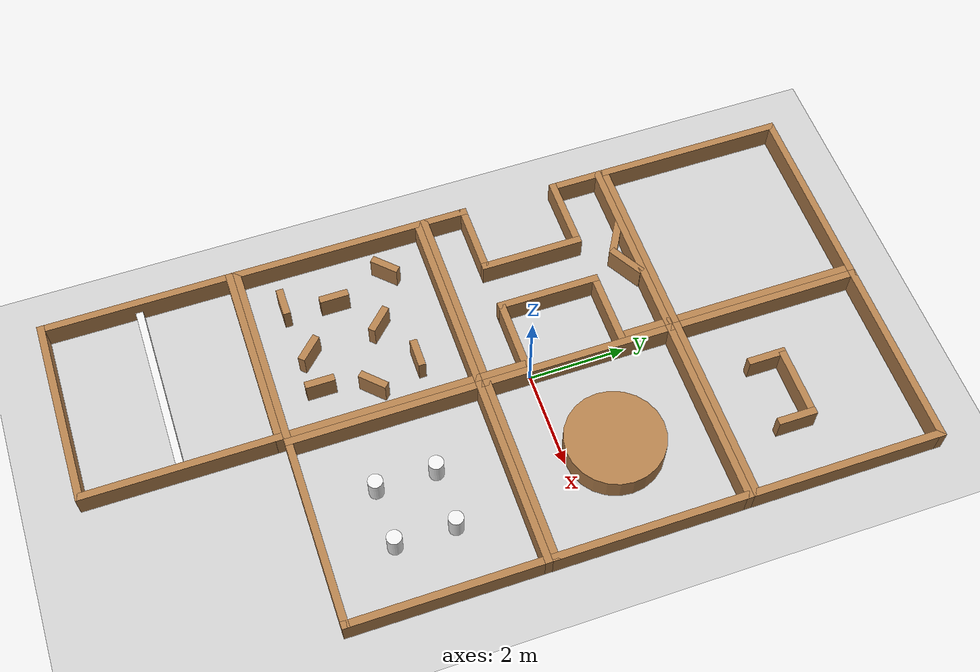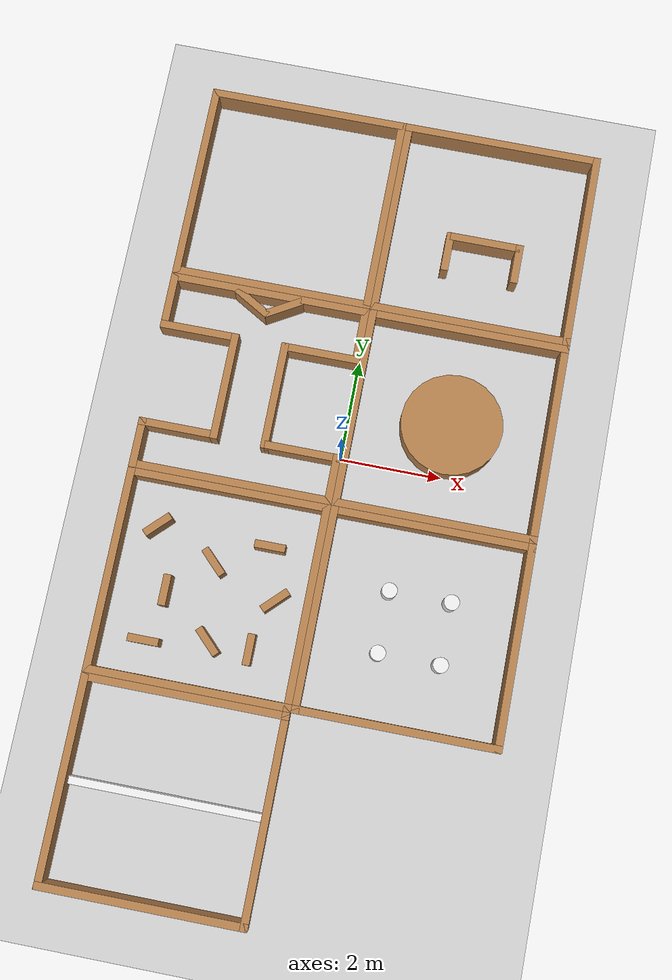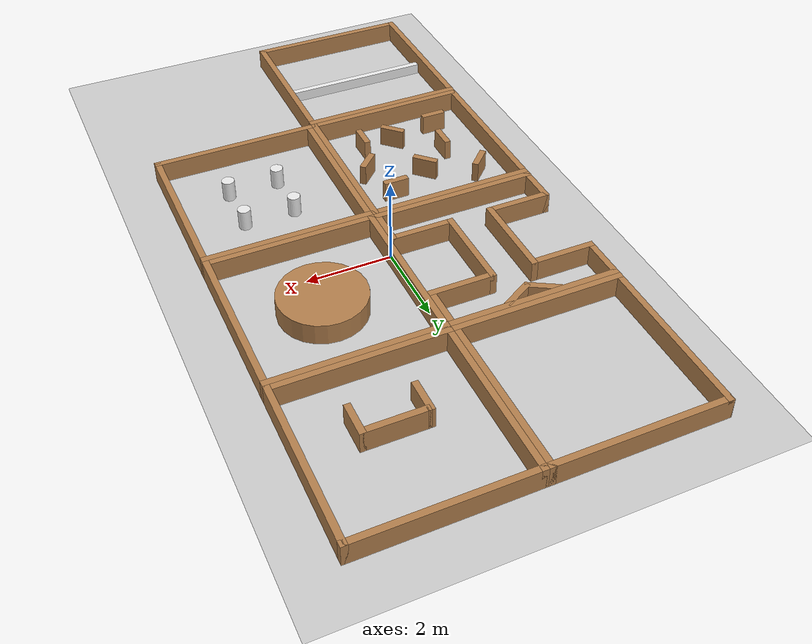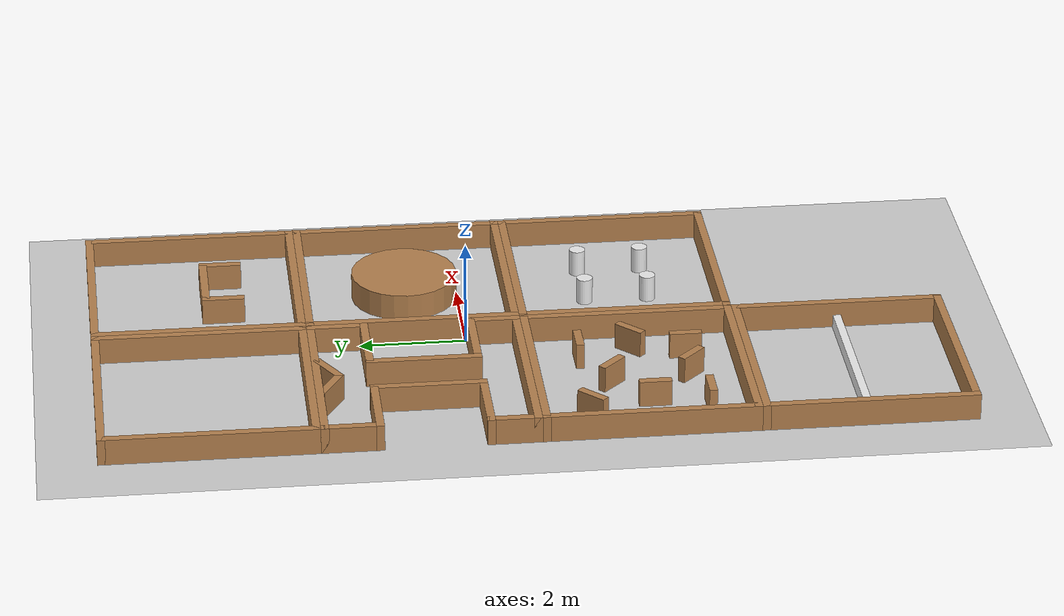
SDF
<sdf version="1.6">
 <world name="default">
  <light name="sun" type="directional">
   <pose>0 0 10 0 -0 0</pose>
   <diffuse>0.8 0.8 0.8 1</diffuse>
   <specular>0.1 0.1 0.1 1</specular>
   <attenuation>
    <range>1000</range>
    <constant>0.9</constant>
    <linear>0.01</linear>
    <quadratic>0.001</quadratic>
   </attenuation>
   <direction>-0.5 0.5 -1</direction>
  </light>
  <model name="ground_plane">
   <static>1</static>
   <link name="link">
    <collision name="collision">
     <geometry><plane><normal>0 0 1</normal><size>100 100</size></plane></geometry>
     <surface><friction><ode><mu>100</mu><mu2>50</mu2></ode></friction></surface>
    </collision>
    <visual name="visual">
     <cast_shadows>0</cast_shadows>
     <geometry><plane><normal>0 0 1</normal><size>100 100</size></plane></geometry>
     <material>
      <script><uri>file://media/materials/scripts/gazebo.material</uri><name>Gazebo/Grey</name></script>
     </material>
    </visual>
   </link>
  </model>
  <gravity>0 0 -9.8</gravity>
  <magnetic_field>6e-06 2.3e-05 -4.2e-05</magnetic_field>
  <atmosphere type="adiabatic"/>
  <physics name="default_physics" default="0" type="ode">
   <max_step_size>0.001</max_step_size>
   <real_time_factor>1</real_time_factor>
   <real_time_update_rate>1000</real_time_update_rate>
  </physics>
  <scene><ambient>0.4 0.4 0.4 1</ambient><background>0.7 0.7 0.7 1</background><shadows>1</shadows></scene>
  <spherical_coordinates>
   <surface_model>EARTH_WGS84</surface_model>
   <latitude_deg>0</latitude_deg>
   <longitude_deg>0</longitude_deg>
   <elevation>0</elevation>
   <heading_deg>0</heading_deg>
  </spherical_coordinates>
  <model name="empty_square">
   <pose>-2 5 0 0 -0 0</pose>
   <link name="Wall_0">
    <collision name="Wall_0_Collision">
     <geometry><box><size>4 0.15 0.5</size></box></geometry>
     <pose>0 0 0.25 0 -0 0</pose>
    </collision>
    <visual name="Wall_0_Visual">
     <pose>0 0 0.25 0 -0 0</pose>
     <geometry><box><size>4 0.15 0.5</size></box></geometry>
     <material>
      <script><uri>file://media/materials/scripts/gazebo.material</uri><name>Gazebo/Wood</name></script>
      <ambient>1 1 1 1</ambient>
     </material>
    </visual>
    <pose>0 1.925 0 0 -0 0</pose>
   </link>
   <link name="Wall_2">
    <collision name="Wall_2_Collision">
     <geometry><box><size>4 0.15 0.5</size></box></geometry>
     <pose>0 0 0.25 0 -0 0</pose>
    </collision>
    <visual name="Wall_2_Visual">
     <pose>0 0 0.25 0 -0 0</pose>
     <geometry><box><size>4 0.15 0.5</size></box></geometry>
     <material>
      <script><uri>file://media/materials/scripts/gazebo.material</uri><name>Gazebo/Wood</name></script>
      <ambient>1 1 1 1</ambient>
     </material>
    </visual>
    <pose>-1.925 0 0 0 0 -1.5708</pose>
   </link>
   <link name="Wall_3">
    <collision name="Wall_3_Collision">
     <geometry><box><size>4 0.15 0.5</size></box></geometry>
     <pose>0 0 0.25 0 -0 0</pose>
    </collision>
    <visual name="Wall_3_Visual">
     <pose>0 0 0.25 0 -0 0</pose>
     <geometry><box><size>4 0.15 0.5</size></box></geometry>
     <material>
      <script><uri>file://media/materials/scripts/gazebo.material</uri><name>Gazebo/Wood</name></script>
      <ambient>1 1 1 1</ambient>
     </material>
    </visual>
    <pose>0 -1.925 0 0 -0 0</pose>
   </link>
   <link name="Wall_4">
    <collision name="Wall_4_Collision">
     <geometry><box><size>4 0.15 0.5</size></box></geometry>
     <pose>0 0 0.25 0 -0 0</pose>
    </collision>
    <visual name="Wall_4_Visual">
     <pose>0 0 0.25 0 -0 0</pose>
     <geometry><box><size>4 0.15 0.5</size></box></geometry>
     <material>
      <script><uri>file://media/materials/scripts/gazebo.material</uri><name>Gazebo/Wood</name></script>
      <ambient>1 1 1 1</ambient>
     </material>
    </visual>
    <pose>1.925 0 0 0 -0 1.5708</pose>
   </link>
   <static>1</static>
  </model>
  <model name="initial_move_away">
   <pose>2 5 0 0 -0 0</pose>
   <link name="Wall_0">
    <collision name="Wall_0_Collision">
     <geometry><box><size>4 0.15 0.5</size></box></geometry>
     <pose>0 0 0.25 0 -0 0</pose>
    </collision>
    <visual name="Wall_0_Visual">
     <pose>0 0 0.25 0 -0 0</pose>
     <geometry><box><size>4 0.15 0.5</size></box></geometry>
     <material>
      <script><uri>file://media/materials/scripts/gazebo.material</uri><name>Gazebo/Wood</name></script>
      <ambient>1 1 1 1</ambient>
     </material>
    </visual>
    <pose>0 1.925 0 0 -0 0</pose>
   </link>
   <link name="Wall_2">
    <collision name="Wall_2_Collision">
     <geometry><box><size>4 0.15 0.5</size></box></geometry>
     <pose>0 0 0.25 0 -0 0</pose>
    </collision>
    <visual name="Wall_2_Visual">
     <pose>0 0 0.25 0 -0 0</pose>
     <geometry><box><size>4 0.15 0.5</size></box></geometry>
     <material>
      <script><uri>file://media/materials/scripts/gazebo.material</uri><name>Gazebo/Wood</name></script>
      <ambient>1 1 1 1</ambient>
     </material>
    </visual>
    <pose>-1.925 0 0 0 0 -1.5708</pose>
   </link>
   <link name="Wall_3">
    <collision name="Wall_3_Collision">
     <geometry><box><size>4 0.15 0.5</size></box></geometry>
     <pose>0 0 0.25 0 -0 0</pose>
    </collision>
    <visual name="Wall_3_Visual">
     <pose>0 0 0.25 0 -0 0</pose>
     <geometry><box><size>4 0.15 0.5</size></box></geometry>
     <material>
      <script><uri>file://media/materials/scripts/gazebo.material</uri><name>Gazebo/Wood</name></script>
      <ambient>1 1 1 1</ambient>
     </material>
    </visual>
    <pose>0 -1.925 0 0 -0 0</pose>
   </link>
   <link name="Wall_4">
    <collision name="Wall_4_Collision">
     <geometry><box><size>4 0.15 0.5</size></box></geometry>
     <pose>0 0 0.25 0 -0 0</pose>
    </collision>
    <visual name="Wall_4_Visual">
     <pose>0 0 0.25 0 -0 0</pose>
     <geometry><box><size>4 0.15 0.5</size></box></geometry>
     <material>
      <script><uri>file://media/materials/scripts/gazebo.material</uri><name>Gazebo/Wood</name></script>
      <ambient>1 1 1 1</ambient>
     </material>
    </visual>
    <pose>1.925 0 0 0 -0 1.5708</pose>
   </link>
   <link name="Wall_5">
    <collision name="Wall_5_Collision">
     <geometry><box><size>1.4 0.15 0.5</size></box></geometry>
     <pose>0 0 0.25 0 -0 0</pose>
    </collision>
    <visual name="Wall_5_Visual">
     <pose>0 0 0.25 0 -0 0</pose>
     <geometry><box><size>1.4 0.15 0.5</size></box></geometry>
     <material>
      <script><uri>file://media/materials/scripts/gazebo.material</uri><name>Gazebo/Wood</name></script>
      <ambient>1 1 1 1</ambient>
     </material>
    </visual>
    <pose>0 -0.2 0 0 -0 0</pose>
   </link>
   <link name="Wall_6">
    <collision name="Wall_6_Collision">
     <geometry><box><size>0.8 0.15 0.5</size></box></geometry>
     <pose>0 0 0.25 0 -0 0</pose>
    </collision>
    <visual name="Wall_6_Visual">
     <pose>0 0 0.25 0 -0 0</pose>
     <geometry><box><size>0.8 0.15 0.5</size></box></geometry>
     <material>
      <script><uri>file://media/materials/scripts/gazebo.material</uri><name>Gazebo/Wood</name></script>
      <ambient>1 1 1 1</ambient>
     </material>
    </visual>
    <pose>0.7 -0.525 0 0 -0 1.5708</pose>
   </link>
   <link name="Wall_7">
    <collision name="Wall_7_Collision">
     <geometry><box><size>0.8 0.15 0.5</size></box></geometry>
     <pose>0 0 0.25 0 -0 0</pose>
    </collision>
    <visual name="Wall_7_Visual">
     <pose>0 0 0.25 0 -0 0</pose>
     <geometry><box><size>0.8 0.15 0.5</size></box></geometry>
     <material>
      <script><uri>file://media/materials/scripts/gazebo.material</uri><name>Gazebo/Wood</name></script>
      <ambient>1 1 1 1</ambient>
     </material>
    </visual>
    <pose>-0.7 -0.525 0 0 -0 1.5708</pose>
   </link>
   <static>1</static>
  </model>
  <model name="left_right_turn">
   <pose>-2 1 0 0 -0 0</pose>
   <link name="Wall_0">
    <collision name="Wall_0_Collision">
     <geometry><box><size>4 0.15 0.5</size></box></geometry>
     <pose>0 0 0.25 0 -0 0</pose>
    </collision>
    <visual name="Wall_0_Visual">
     <pose>0 0 0.25 0 -0 0</pose>
     <geometry><box><size>4 0.15 0.5</size></box></geometry>
     <material>
      <script><uri>file://media/materials/scripts/gazebo.material</uri><name>Gazebo/Wood</name></script>
      <ambient>1 1 1 1</ambient>
     </material>
    </visual>
    <pose>0 1.925 0 0 -0 0</pose>
   </link>
   <link name="Wall_2">
    <collision name="Wall_2_Collision">
     <geometry><box><size>1 0.15 0.5</size></box></geometry>
     <pose>0 0 0.25 0 -0 0</pose>
    </collision>
    <visual name="Wall_2_Visual">
     <pose>0 0 0.25 0 -0 0</pose>
     <geometry><box><size>1 0.15 0.5</size></box></geometry>
     <material>
      <script><uri>file://media/materials/scripts/gazebo.material</uri><name>Gazebo/Wood</name></script>
      <ambient>1 1 1 1</ambient>
     </material>
    </visual>
    <pose>-1.925 1.5 0 0 0 -1.5708</pose>
   </link>
   <link name="Wall_3">
    <collision name="Wall_3_Collision">
     <geometry><box><size>4 0.15 0.5</size></box></geometry>
     <pose>0 0 0.25 0 -0 0</pose>
    </collision>
    <visual name="Wall_3_Visual">
     <pose>0 0 0.25 0 -0 0</pose>
     <geometry><box><size>4 0.15 0.5</size></box></geometry>
     <material>
      <script><uri>file://media/materials/scripts/gazebo.material</uri><name>Gazebo/Wood</name></script>
      <ambient>1 1 1 1</ambient>
     </material>
    </visual>
    <pose>0 -1.925 0 0 -0 0</pose>
   </link>
   <link name="Wall_4">
    <collision name="Wall_4_Collision">
     <geometry><box><size>1 0.15 0.5</size></box></geometry>
     <pose>0 0 0.25 0 -0 0</pose>
    </collision>
    <visual name="Wall_4_Visual">
     <pose>0 0 0.25 0 -0 0</pose>
     <geometry><box><size>1 0.15 0.5</size></box></geometry>
     <material>
      <script><uri>file://media/materials/scripts/gazebo.material</uri><name>Gazebo/Wood</name></script>
      <ambient>1 1 1 1</ambient>
     </material>
    </visual>
    <pose>1.925 1.5 0 0 -0 1.5708</pose>
   </link>
   <link name="Wall_5">
    <collision name="Wall_5_Collision">
     <geometry><box><size>1 0.15 0.5</size></box></geometry>
     <pose>0 0 0.25 0 -0 0</pose>
    </collision>
    <visual name="Wall_5_Visual">
     <pose>0 0 0.25 0 -0 0</pose>
     <geometry><box><size>1 0.15 0.5</size></box></geometry>
     <material>
      <script><uri>file://media/materials/scripts/gazebo.material</uri><name>Gazebo/Wood</name></script>
      <ambient>1 1 1 1</ambient>
     </material>
    </visual>
    <pose>-1.925 -1.5 0 0 0 -1.5708</pose>
   </link>
   <link name="Wall_6">
    <collision name="Wall_6_Collision">
     <geometry><box><size>1 0.15 0.5</size></box></geometry>
     <pose>0 0 0.25 0 -0 0</pose>
    </collision>
    <visual name="Wall_6_Visual">
     <pose>0 0 0.25 0 -0 0</pose>
     <geometry><box><size>1 0.15 0.5</size></box></geometry>
     <material>
      <script><uri>file://media/materials/scripts/gazebo.material</uri><name>Gazebo/Wood</name></script>
      <ambient>1 1 1 1</ambient>
     </material>
    </visual>
    <pose>1.925 -1.5 0 0 -0 1.5708</pose>
   </link>
   <link name="Wall_7">
    <collision name="Wall_7_Collision">
     <geometry><box><size>1.5 0.15 0.5</size></box></geometry>
     <pose>0 0 0.25 0 -0 0</pose>
    </collision>
    <visual name="Wall_7_Visual">
     <pose>0 0 0.25 0 -0 0</pose>
     <geometry><box><size>1.5 0.15 0.5</size></box></geometry>
     <material>
      <script><uri>file://media/materials/scripts/gazebo.material</uri><name>Gazebo/Wood</name></script>
      <ambient>1 1 1 1</ambient>
     </material>
    </visual>
    <pose>-1.25 0.925 0 0 -0 0</pose>
   </link>
   <link name="Wall_8">
    <collision name="Wall_8_Collision">
     <geometry><box><size>1.5 0.15 0.5</size></box></geometry>
     <pose>0 0 0.25 0 -0 0</pose>
    </collision>
    <visual name="Wall_8_Visual">
     <pose>0 0 0.25 0 -0 0</pose>
     <geometry><box><size>1.5 0.15 0.5</size></box></geometry>
     <material>
      <script><uri>file://media/materials/scripts/gazebo.material</uri><name>Gazebo/Wood</name></script>
      <ambient>1 1 1 1</ambient>
     </material>
    </visual>
    <pose>1.25 0.925 0 0 -0 0</pose>
   </link>
   <link name="Wall_9">
    <collision name="Wall_9_Collision">
     <geometry><box><size>1.5 0.15 0.5</size></box></geometry>
     <pose>0 0 0.25 0 -0 0</pose>
    </collision>
    <visual name="Wall_9_Visual">
     <pose>0 0 0.25 0 -0 0</pose>
     <geometry><box><size>1.5 0.15 0.5</size></box></geometry>
     <material>
      <script><uri>file://media/materials/scripts/gazebo.material</uri><name>Gazebo/Wood</name></script>
      <ambient>1 1 1 1</ambient>
     </material>
    </visual>
    <pose>-1.25 -1.075 0 0 -0 0</pose>
   </link>
   <link name="Wall_10">
    <collision name="Wall_10_Collision">
     <geometry><box><size>1.5 0.15 0.5</size></box></geometry>
     <pose>0 0 0.25 0 -0 0</pose>
    </collision>
    <visual name="Wall_10_Visual">
     <pose>0 0 0.25 0 -0 0</pose>
     <geometry><box><size>1.5 0.15 0.5</size></box></geometry>
     <material>
      <script><uri>file://media/materials/scripts/gazebo.material</uri><name>Gazebo/Wood</name></script>
      <ambient>1 1 1 1</ambient>
     </material>
    </visual>
    <pose>1.25 -1.075 0 0 -0 0</pose>
   </link>
   <link name="Wall_11">
    <collision name="Wall_11_Collision">
     <geometry><box><size>2.15 0.15 0.5</size></box></geometry>
     <pose>0 0 0.25 0 -0 0</pose>
    </collision>
    <visual name="Wall_11_Visual">
     <pose>0 0 0.25 0 -0 0</pose>
     <geometry><box><size>2.15 0.15 0.5</size></box></geometry>
     <material>
      <script><uri>file://media/materials/scripts/gazebo.material</uri><name>Gazebo/Wood</name></script>
      <ambient>1 1 1 1</ambient>
     </material>
    </visual>
    <pose>-0.5 -0.075 0 0 0 -1.5708</pose>
   </link>
   <link name="Wall_12">
    <collision name="Wall_12_Collision">
     <geometry><box><size>2.15 0.15 0.5</size></box></geometry>
     <pose>0 0 0.25 0 -0 0</pose>
    </collision>
    <visual name="Wall_12_Visual">
     <pose>0 0 0.25 0 -0 0</pose>
     <geometry><box><size>2.15 0.15 0.5</size></box></geometry>
     <material>
      <script><uri>file://media/materials/scripts/gazebo.material</uri><name>Gazebo/Wood</name></script>
      <ambient>1 1 1 1</ambient>
     </material>
    </visual>
    <pose>0.5 -0.075 0 0 0 -1.5708</pose>
   </link>
   <link name="Wall_13">
    <collision name="Wall_13_Collision">
     <geometry><box><size>0.8 0.15 0.5</size></box></geometry>
     <pose>0 0 0.25 0 -0 0</pose>
    </collision>
    <visual name="Wall_13_Visual">
     <pose>0 0 0.25 0 -0 0</pose>
     <geometry><box><size>0.8 0.15 0.5</size></box></geometry>
     <material>
      <script><uri>file://media/materials/scripts/gazebo.material</uri><name>Gazebo/Wood</name></script>
      <ambient>1 1 1 1</ambient>
     </material>
    </visual>
    <pose>0.31 1.7 0 0 -0 0.5236</pose>
   </link>
   <link name="Wall_14">
    <collision name="Wall_14_Collision">
     <geometry><box><size>0.8 0.15 0.5</size></box></geometry>
     <pose>0 0 0.25 0 -0 0</pose>
    </collision>
    <visual name="Wall_14_Visual">
     <pose>0 0 0.25 0 -0 0</pose>
     <geometry><box><size>0.8 0.15 0.5</size></box></geometry>
     <material>
      <script><uri>file://media/materials/scripts/gazebo.material</uri><name>Gazebo/Wood</name></script>
      <ambient>1 1 1 1</ambient>
     </material>
    </visual>
    <pose>-0.31 1.7 0 0 -0 2.6179</pose>
   </link>
   <static>1</static>
  </model>
  <model name="moving_obstacles">
   <pose>2 -3 0 0 -0 0</pose>
   <link name="Wall_0">
    <collision name="Wall_0_Collision">
     <geometry><box><size>4 0.15 0.5</size></box></geometry>
     <pose>0 0 0.25 0 -0 0</pose>
    </collision>
    <visual name="Wall_0_Visual">
     <pose>0 0 0.25 0 -0 0</pose>
     <geometry><box><size>4 0.15 0.5</size></box></geometry>
     <material>
      <script><uri>file://media/materials/scripts/gazebo.material</uri><name>Gazebo/Wood</name></script>
      <ambient>1 1 1 1</ambient>
     </material>
    </visual>
    <pose>0 1.925 0 0 -0 0</pose>
   </link>
   <link name="Wall_2">
    <collision name="Wall_2_Collision">
     <geometry><box><size>4 0.15 0.5</size></box></geometry>
     <pose>0 0 0.25 0 -0 0</pose>
    </collision>
    <visual name="Wall_2_Visual">
     <pose>0 0 0.25 0 -0 0</pose>
     <geometry><box><size>4 0.15 0.5</size></box></geometry>
     <material>
      <script><uri>file://media/materials/scripts/gazebo.material</uri><name>Gazebo/Wood</name></script>
      <ambient>1 1 1 1</ambient>
     </material>
    </visual>
    <pose>-1.925 0 0 0 0 -1.5708</pose>
   </link>
   <link name="Wall_3">
    <collision name="Wall_3_Collision">
     <geometry><box><size>4 0.15 0.5</size></box></geometry>
     <pose>0 0 0.25 0 -0 0</pose>
    </collision>
    <visual name="Wall_3_Visual">
     <pose>0 0 0.25 0 -0 0</pose>
     <geometry><box><size>4 0.15 0.5</size></box></geometry>
     <material>
      <script><uri>file://media/materials/scripts/gazebo.material</uri><name>Gazebo/Wood</name></script>
      <ambient>1 1 1 1</ambient>
     </material>
    </visual>
    <pose>0 -1.925 0 0 -0 0</pose>
   </link>
   <link name="Wall_4">
    <collision name="Wall_4_Collision">
     <geometry><box><size>4 0.15 0.5</size></box></geometry>
     <pose>0 0 0.25 0 -0 0</pose>
    </collision>
    <visual name="Wall_4_Visual">
     <pose>0 0 0.25 0 -0 0</pose>
     <geometry><box><size>4 0.15 0.5</size></box></geometry>
     <material>
      <script><uri>file://media/materials/scripts/gazebo.material</uri><name>Gazebo/Wood</name></script>
      <ambient>1 1 1 1</ambient>
     </material>
    </visual>
    <pose>1.925 0 0 0 -0 1.5708</pose>
   </link>
   <static>1</static>
  </model>
  <model name="moving_obstacles_round">
   <pose>2 -3 0 0 -0 0</pose>
   <link name="obstacle">
    <collision name="obstacle_1">
     <pose>-0.6 -0.6 0.25 0 0 0</pose>
     <geometry><cylinder><radius>0.15</radius><length>0.5</length></cylinder></geometry>
    </collision>
    <visual name="obstacle_1">
     <pose>-0.6 -0.6 0.25 0 0 0</pose>
     <geometry><cylinder><radius>0.15</radius><length>0.5</length></cylinder></geometry>
     <material>
      <script><uri>file://media/materials/scripts/gazebo.material</uri><name>Gazebo/White</name></script>
     </material>
    </visual>
    <collision name="obstacle_2">
     <pose>-0.6 0.6 0.25 0 0 0</pose>
     <geometry><cylinder><radius>0.15</radius><length>0.5</length></cylinder></geometry>
    </collision>
    <visual name="obstacle_2">
     <pose>-0.6 0.6 0.25 0 0 0</pose>
     <geometry><cylinder><radius>0.15</radius><length>0.5</length></cylinder></geometry>
     <material>
      <script><uri>file://media/materials/scripts/gazebo.material</uri><name>Gazebo/White</name></script>
     </material>
    </visual>
    <collision name="obstacle_3">
     <pose>0.6 -0.6 0.25 0 0 0</pose>
     <geometry><cylinder><radius>0.15</radius><length>0.5</length></cylinder></geometry>
    </collision>
    <visual name="obstacle_3">
     <pose>0.6 -0.6 0.25 0 0 0</pose>
     <geometry><cylinder><radius>0.15</radius><length>0.5</length></cylinder></geometry>
     <material>
      <script><uri>file://media/materials/scripts/gazebo.material</uri><name>Gazebo/White</name></script>
     </material>
    </visual>
    <collision name="obstacle_4">
     <pose>0.6 0.6 0.25 0 0 0</pose>
     <geometry><cylinder><radius>0.15</radius><length>0.5</length></cylinder></geometry>
    </collision>
    <visual name="obstacle_4">
     <pose>0.6 0.6 0.25 0 0 0</pose>
     <geometry><cylinder><radius>0.15</radius><length>0.5</length></cylinder></geometry>
     <material>
      <script><uri>file://media/materials/scripts/gazebo.material</uri><name>Gazebo/White</name></script>
     </material>
    </visual>
   </link>
  </model>
  <model name="gate_env">
   <pose>-2 -7 0 0 -0 0</pose>
   <link name="Wall_0">
    <collision name="Wall_0_Collision">
     <geometry><box><size>4 0.15 0.5</size></box></geometry>
     <pose>0 0 0.25 0 -0 0</pose>
    </collision>
    <visual name="Wall_0_Visual">
     <pose>0 0 0.25 0 -0 0</pose>
     <geometry><box><size>4 0.15 0.5</size></box></geometry>
     <material>
      <script><uri>file://media/materials/scripts/gazebo.material</uri><name>Gazebo/Wood</name></script>
      <ambient>1 1 1 1</ambient>
     </material>
    </visual>
    <pose>0 1.925 0 0 -0 0</pose>
   </link>
   <link name="Wall_2">
    <collision name="Wall_2_Collision">
     <geometry><box><size>4 0.15 0.5</size></box></geometry>
     <pose>0 0 0.25 0 -0 0</pose>
    </collision>
    <visual name="Wall_2_Visual">
     <pose>0 0 0.25 0 -0 0</pose>
     <geometry><box><size>4 0.15 0.5</size></box></geometry>
     <material>
      <script><uri>file://media/materials/scripts/gazebo.material</uri><name>Gazebo/Wood</name></script>
      <ambient>1 1 1 1</ambient>
     </material>
    </visual>
    <pose>-1.925 0 0 0 0 -1.5708</pose>
   </link>
   <link name="Wall_3">
    <collision name="Wall_3_Collision">
     <geometry><box><size>4 0.15 0.5</size></box></geometry>
     <pose>0 0 0.25 0 -0 0</pose>
    </collision>
    <visual name="Wall_3_Visual">
     <pose>0 0 0.25 0 -0 0</pose>
     <geometry><box><size>4 0.15 0.5</size></box></geometry>
     <material>
      <script><uri>file://media/materials/scripts/gazebo.material</uri><name>Gazebo/Wood</name></script>
      <ambient>1 1 1 1</ambient>
     </material>
    </visual>
    <pose>0 -1.925 0 0 -0 0</pose>
   </link>
   <link name="Wall_4">
    <collision name="Wall_4_Collision">
     <geometry><box><size>4 0.15 0.5</size></box></geometry>
     <pose>0 0 0.25 0 -0 0</pose>
    </collision>
    <visual name="Wall_4_Visual">
     <pose>0 0 0.25 0 -0 0</pose>
     <geometry><box><size>4 0.15 0.5</size></box></geometry>
     <material>
      <script><uri>file://media/materials/scripts/gazebo.material</uri><name>Gazebo/Wood</name></script>
      <ambient>1 1 1 1</ambient>
     </material>
    </visual>
    <pose>1.925 0 0 0 -0 1.5708</pose>
   </link>
   <static>1</static>
  </model>
  <model name="gate_moving">
   <pose>-2 -7 0 0 -0 0</pose>
   <link name="gate_1">
    <collision name="gate_1"><geometry><box><size>3.69 0.15 0.5</size></box></geometry></collision>
    <visual name="gate_1">
     <geometry><box><size>3.69 0.15 0.5</size></box></geometry>
     <material>
      <script><uri>file://media/materials/scripts/gazebo.material</uri><name>Gazebo/White</name></script>
     </material>
    </visual>
    <gravity>0</gravity>
   </link>
  </model>
  <model name="round_obstacle">
   <pose>2 1 0 0 -0 0</pose>
   <link name="Wall_0">
    <collision name="Wall_0_Collision">
     <geometry><box><size>4 0.15 0.5</size></box></geometry>
     <pose>0 0 0.25 0 -0 0</pose>
    </collision>
    <visual name="Wall_0_Visual">
     <pose>0 0 0.25 0 -0 0</pose>
     <geometry><box><size>4 0.15 0.5</size></box></geometry>
     <material>
      <script><uri>file://media/materials/scripts/gazebo.material</uri><name>Gazebo/Wood</name></script>
      <ambient>1 1 1 1</ambient>
     </material>
    </visual>
    <pose>0 1.925 0 0 -0 0</pose>
   </link>
   <link name="Wall_2">
    <collision name="Wall_2_Collision">
     <geometry><box><size>4 0.15 0.5</size></box></geometry>
     <pose>0 0 0.25 0 -0 0</pose>
    </collision>
    <visual name="Wall_2_Visual">
     <pose>0 0 0.25 0 -0 0</pose>
     <geometry><box><size>4 0.15 0.5</size></box></geometry>
     <material>
      <script><uri>file://media/materials/scripts/gazebo.material</uri><name>Gazebo/Wood</name></script>
      <ambient>1 1 1 1</ambient>
     </material>
    </visual>
    <pose>-1.925 0 0 0 0 -1.5708</pose>
   </link>
   <link name="Wall_3">
    <collision name="Wall_3_Collision">
     <geometry><box><size>4 0.15 0.5</size></box></geometry>
     <pose>0 0 0.25 0 -0 0</pose>
    </collision>
    <visual name="Wall_3_Visual">
     <pose>0 0 0.25 0 -0 0</pose>
     <geometry><box><size>4 0.15 0.5</size></box></geometry>
     <material>
      <script><uri>file://media/materials/scripts/gazebo.material</uri><name>Gazebo/Wood</name></script>
      <ambient>1 1 1 1</ambient>
     </material>
    </visual>
    <pose>0 -1.925 0 0 -0 0</pose>
   </link>
   <link name="Wall_4">
    <collision name="Wall_4_Collision">
     <geometry><box><size>4 0.15 0.5</size></box></geometry>
     <pose>0 0 0.25 0 -0 0</pose>
    </collision>
    <visual name="Wall_4_Visual">
     <pose>0 0 0.25 0 -0 0</pose>
     <geometry><box><size>4 0.15 0.5</size></box></geometry>
     <material>
      <script><uri>file://media/materials/scripts/gazebo.material</uri><name>Gazebo/Wood</name></script>
      <ambient>1 1 1 1</ambient>
     </material>
    </visual>
    <pose>1.925 0 0 0 -0 1.5708</pose>
   </link>
   <link name="obstacle">
    <collision name="obstacle_Collision">
     <geometry><cylinder><radius>1</radius><length>0.5</length></cylinder></geometry>
     <pose>0 0 0.25 0 -0 0</pose>
    </collision>
    <visual name="obstacle_Visual">
     <pose>0 0 0.25 0 -0 0</pose>
     <geometry><cylinder><radius>1</radius><length>0.5</length></cylinder></geometry>
     <material>
      <script><uri>file://media/materials/scripts/gazebo.material</uri><name>Gazebo/Wood</name></script>
      <ambient>1 1 1 1</ambient>
     </material>
    </visual>
    <pose>0 0 0 0 -0 1.5708</pose>
   </link>
   <static>1</static>
  </model>
  <model name="static_obstacles">
   <pose>-2 -3 0 0 -0 0</pose>
   <link name="Wall_0">
    <collision name="Wall_0_Collision">
     <geometry><box><size>4 0.15 0.5</size></box></geometry>
     <pose>0 0 0.25 0 -0 0</pose>
    </collision>
    <visual name="Wall_0_Visual">
     <pose>0 0 0.25 0 -0 0</pose>
     <geometry><box><size>4 0.15 0.5</size></box></geometry>
     <material>
      <script><uri>file://media/materials/scripts/gazebo.material</uri><name>Gazebo/Wood</name></script>
      <ambient>1 1 1 1</ambient>
     </material>
    </visual>
    <pose>0 1.925 0 0 -0 0</pose>
   </link>
   <link name="Wall_2">
    <collision name="Wall_2_Collision">
     <geometry><box><size>4 0.15 0.5</size></box></geometry>
     <pose>0 0 0.25 0 -0 0</pose>
    </collision>
    <visual name="Wall_2_Visual">
     <pose>0 0 0.25 0 -0 0</pose>
     <geometry><box><size>4 0.15 0.5</size></box></geometry>
     <material>
      <script><uri>file://media/materials/scripts/gazebo.material</uri><name>Gazebo/Wood</name></script>
      <ambient>1 1 1 1</ambient>
     </material>
    </visual>
    <pose>-1.925 0 0 0 0 -1.5708</pose>
   </link>
   <link name="Wall_3">
    <collision name="Wall_3_Collision">
     <geometry><box><size>4 0.15 0.5</size></box></geometry>
     <pose>0 0 0.25 0 -0 0</pose>
    </collision>
    <visual name="Wall_3_Visual">
     <pose>0 0 0.25 0 -0 0</pose>
     <geometry><box><size>4 0.15 0.5</size></box></geometry>
     <material>
      <script><uri>file://media/materials/scripts/gazebo.material</uri><name>Gazebo/Wood</name></script>
      <ambient>1 1 1 1</ambient>
     </material>
    </visual>
    <pose>0 -1.925 0 0 -0 0</pose>
   </link>
   <link name="Wall_4">
    <collision name="Wall_4_Collision">
     <geometry><box><size>4 0.15 0.5</size></box></geometry>
     <pose>0 0 0.25 0 -0 0</pose>
    </collision>
    <visual name="Wall_4_Visual">
     <pose>0 0 0.25 0 -0 0</pose>
     <geometry><box><size>4 0.15 0.5</size></box></geometry>
     <material>
      <script><uri>file://media/materials/scripts/gazebo.material</uri><name>Gazebo/Wood</name></script>
      <ambient>1 1 1 1</ambient>
     </material>
    </visual>
    <pose>1.925 0 0 0 -0 1.5708</pose>
   </link>
   <link name="obstacle_1">
    <collision name="obstacle_1_Collision">
     <geometry><box><size>0.6 0.15 0.5</size></box></geometry>
     <pose>0 0 0.25 0 -0 0.785</pose>
    </collision>
    <visual name="obstacle_1_Visual">
     <pose>0 0 0.25 0 -0 0.785</pose>
     <geometry><box><size>0.6 0.15 0.5</size></box></geometry>
     <material>
      <script><uri>file://media/materials/scripts/gazebo.material</uri><name>Gazebo/Wood</name></script>
      <ambient>1 1 1 1</ambient>
     </material>
    </visual>
    <pose>0 0.5 0 0 -0 1.5708</pose>
   </link>
   <link name="obstacle_2">
    <collision name="obstacle_2_Collision">
     <geometry><box><size>0.6 0.15 0.5</size></box></geometry>
     <pose>0 0 0.25 0 0 -0.785</pose>
    </collision>
    <visual name="obstacle_2_Visual">
     <pose>0 0 0.25 0 0 -0.785</pose>
     <geometry><box><size>0.6 0.15 0.5</size></box></geometry>
     <material>
      <script><uri>file://media/materials/scripts/gazebo.material</uri><name>Gazebo/Wood</name></script>
      <ambient>1 1 1 1</ambient>
     </material>
    </visual>
    <pose>-1.2 1 0 0 -0 1.5708</pose>
   </link>
   <link name="obstacle_3">
    <collision name="obstacle_3_Collision">
     <geometry><box><size>0.6 0.15 0.5</size></box></geometry>
     <pose>0 0 0.25 0 -0 0</pose>
    </collision>
    <visual name="obstacle_3_Visual">
     <pose>0 0 0.25 0 -0 0</pose>
     <geometry><box><size>0.6 0.15 0.5</size></box></geometry>
     <material>
      <script><uri>file://media/materials/scripts/gazebo.material</uri><name>Gazebo/Wood</name></script>
      <ambient>1 1 1 1</ambient>
     </material>
    </visual>
    <pose>-0.8 -0.2 0 0 -0 1.5708</pose>
   </link>
   <link name="obstacle_4">
    <collision name="obstacle_4_Collision">
     <geometry><box><size>0.6 0.15 0.5</size></box></geometry>
     <pose>0 0 0.25 0 -0 0.785</pose>
    </collision>
    <visual name="obstacle_4_Visual">
     <pose>0 0 0.25 0 -0 0.785</pose>
     <geometry><box><size>0.6 0.15 0.5</size></box></geometry>
     <material>
      <script><uri>file://media/materials/scripts/gazebo.material</uri><name>Gazebo/Wood</name></script>
      <ambient>1 1 1 1</ambient>
     </material>
    </visual>
    <pose>0.2 -1 0 0 -0 1.5708</pose>
   </link>
   <link name="obstacle_5">
    <collision name="obstacle_5_Collision">
     <geometry><box><size>0.6 0.15 0.5</size></box></geometry>
     <pose>0 0 0.25 0 -0 0</pose>
    </collision>
    <visual name="obstacle_5_Visual">
     <pose>0 0 0.25 0 -0 0</pose>
     <geometry><box><size>0.6 0.15 0.5</size></box></geometry>
     <material>
      <script><uri>file://media/materials/scripts/gazebo.material</uri><name>Gazebo/Wood</name></script>
      <ambient>1 1 1 1</ambient>
     </material>
    </visual>
    <pose>-1 -1.2 0 0 -0 0</pose>
   </link>
   <link name="obstacle_6">
    <collision name="obstacle_6_Collision">
     <geometry><box><size>0.6 0.15 0.5</size></box></geometry>
     <pose>0 0 0.25 0 -0 0</pose>
    </collision>
    <visual name="obstacle_6_Visual">
     <pose>0 0 0.25 0 -0 0</pose>
     <geometry><box><size>0.6 0.15 0.5</size></box></geometry>
     <material>
      <script><uri>file://media/materials/scripts/gazebo.material</uri><name>Gazebo/Wood</name></script>
      <ambient>1 1 1 1</ambient>
     </material>
    </visual>
    <pose>1 -1 0 0 -0 1.5708</pose>
   </link>
   <link name="obstacle_7">
    <collision name="obstacle_7_Collision">
     <geometry><box><size>0.6 0.15 0.5</size></box></geometry>
     <pose>0 0 0.25 0 -0 0</pose>
    </collision>
    <visual name="obstacle_7_Visual">
     <pose>0 0 0.25 0 -0 0</pose>
     <geometry><box><size>0.6 0.15 0.5</size></box></geometry>
     <material>
      <script><uri>file://media/materials/scripts/gazebo.material</uri><name>Gazebo/Wood</name></script>
      <ambient>1 1 1 1</ambient>
     </material>
    </visual>
    <pose>1 1 0 0 -0 0</pose>
   </link>
   <link name="obstacle_7">
    <collision name="obstacle_7_Collision">
     <geometry><box><size>0.6 0.15 0.5</size></box></geometry>
     <pose>0 0 0.25 0 -0 0</pose>
    </collision>
    <visual name="obstacle_7_Visual">
     <pose>0 0 0.25 0 -0 0</pose>
     <geometry><box><size>0.6 0.15 0.5</size></box></geometry>
     <material>
      <script><uri>file://media/materials/scripts/gazebo.material</uri><name>Gazebo/Wood</name></script>
      <ambient>1 1 1 1</ambient>
     </material>
    </visual>
    <pose>1.3 0 0 0 -0 0.785</pose>
   </link>
   <static>1</static>
  </model>
 </world>
</sdf>
